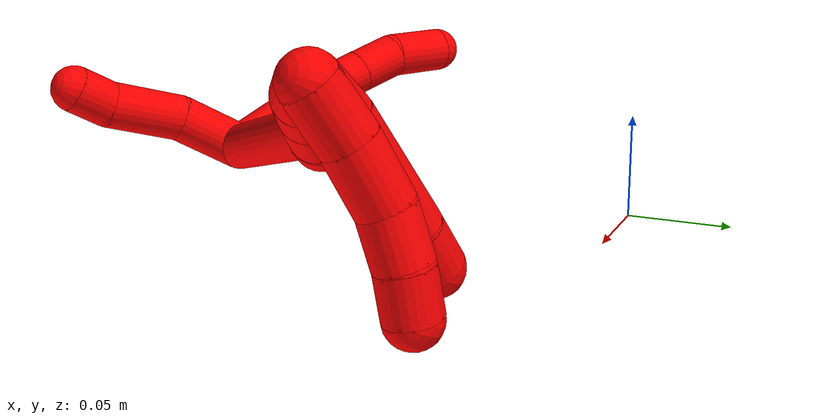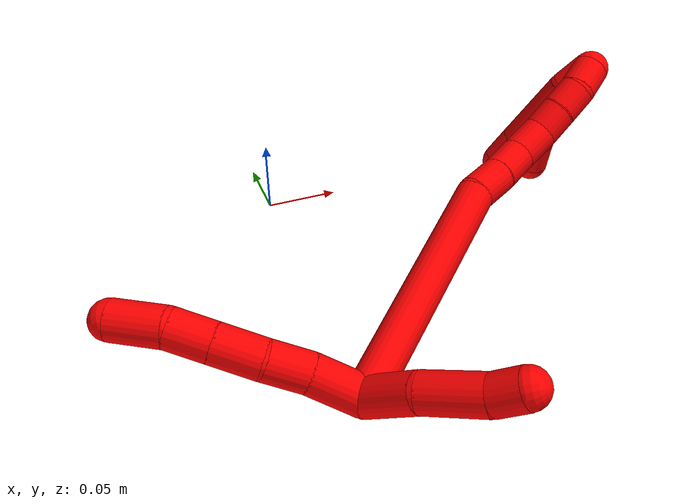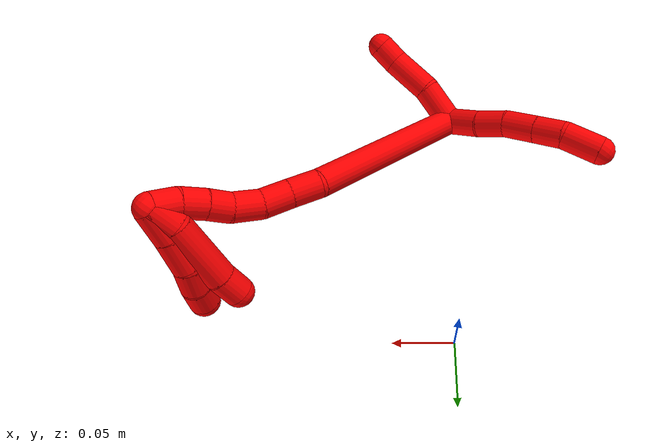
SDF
<sdf version="1.7">
 <world name="default">
  <model name="2">
   <static>0</static>
   <link name="2">
    <collision name="collision-cylinder-e_1_2_8">
     <pose>0.000701 0.011869 -0.011958 -2.35993 0.041562 -0.100801</pose>
     <geometry><cylinder><radius>0.0125</radius><length>0.033725</length></cylinder></geometry>
     <surface>
      <friction><ode><mu>1.16</mu><mu2>1.16</mu2><slip1>0</slip1><slip2>0</slip2></ode></friction>
      <contact><ode><kp>1e+06</kp><kd>1</kd><max_vel>0</max_vel><min_depth>0.001</min_depth></ode></contact>
     </surface>
    </collision>
    <visual name="visual-cylinder-e_1_2_8">
     <pose>0.000701 0.011869 -0.011958 -2.35993 0.041562 -0.100801</pose>
     <geometry><cylinder><radius>0.0125</radius><length>0.033725</length></cylinder></geometry>
     <material><ambient>1 0 0 1</ambient></material>
    </visual>
    <collision name="collision-cylinder-e_2_8_9">
     <pose>-0.000104 0.032993 -0.033517 -2.37454 -0.112368 0.276987</pose>
     <geometry><cylinder><radius>0.0125</radius><length>0.026841</length></cylinder></geometry>
     <surface>
      <friction><ode><mu>1.16</mu><mu2>1.16</mu2><slip1>0</slip1><slip2>0</slip2></ode></friction>
      <contact><ode><kp>1e+06</kp><kd>1</kd><max_vel>0</max_vel><min_depth>0.001</min_depth></ode></contact>
     </surface>
    </collision>
    <visual name="visual-cylinder-e_2_8_9">
     <pose>-0.000104 0.032993 -0.033517 -2.37454 -0.112368 0.276987</pose>
     <geometry><cylinder><radius>0.0125</radius><length>0.026841</length></cylinder></geometry>
     <material><ambient>1 0 0 1</ambient></material>
    </visual>
    <collision name="collision-cylinder-e_3_9_10">
     <pose>-0.00101 0.051331 -0.054927 -2.48594 0.040129 -0.117872</pose>
     <geometry><cylinder><radius>0.0125</radius><length>0.02982</length></cylinder></geometry>
     <surface>
      <friction><ode><mu>1.16</mu><mu2>1.16</mu2><slip1>0</slip1><slip2>0</slip2></ode></friction>
      <contact><ode><kp>1e+06</kp><kd>1</kd><max_vel>0</max_vel><min_depth>0.001</min_depth></ode></contact>
     </surface>
    </collision>
    <visual name="visual-cylinder-e_3_9_10">
     <pose>-0.00101 0.051331 -0.054927 -2.48594 0.040129 -0.117872</pose>
     <geometry><cylinder><radius>0.0125</radius><length>0.02982</length></cylinder></geometry>
     <material><ambient>1 0 0 1</ambient></material>
    </visual>
    <collision name="collision-cylinder-e_4_10_11">
     <pose>0.00018 0.068372 -0.077148 -2.48902 0.045178 -0.133338</pose>
     <geometry><cylinder><radius>0.0125</radius><length>0.026236</length></cylinder></geometry>
     <surface>
      <friction><ode><mu>1.16</mu><mu2>1.16</mu2><slip1>0</slip1><slip2>0</slip2></ode></friction>
      <contact><ode><kp>1e+06</kp><kd>1</kd><max_vel>0</max_vel><min_depth>0.001</min_depth></ode></contact>
     </surface>
    </collision>
    <visual name="visual-cylinder-e_4_10_11">
     <pose>0.00018 0.068372 -0.077148 -2.48902 0.045178 -0.133338</pose>
     <geometry><cylinder><radius>0.0125</radius><length>0.026236</length></cylinder></geometry>
     <material><ambient>1 0 0 1</ambient></material>
    </visual>
    <collision name="collision-cylinder-e_5_11_6">
     <pose>0.001684 0.082335 -0.103104 -2.77291 0.054641 -0.291049</pose>
     <geometry><cylinder><radius>0.0125</radius><length>0.033377</length></cylinder></geometry>
     <surface>
      <friction><ode><mu>1.16</mu><mu2>1.16</mu2><slip1>0</slip1><slip2>0</slip2></ode></friction>
      <contact><ode><kp>1e+06</kp><kd>1</kd><max_vel>0</max_vel><min_depth>0.001</min_depth></ode></contact>
     </surface>
    </collision>
    <visual name="visual-cylinder-e_5_11_6">
     <pose>0.001684 0.082335 -0.103104 -2.77291 0.054641 -0.291049</pose>
     <geometry><cylinder><radius>0.0125</radius><length>0.033377</length></cylinder></geometry>
     <material><ambient>1 0 0 1</ambient></material>
    </visual>
    <collision name="collision-cylinder-e_1_2_12">
     <pose>-0.005193 0.003411 0.01827 -0.184597 -0.272438 0.025373</pose>
     <geometry><cylinder><radius>0.0125</radius><length>0.038595</length></cylinder></geometry>
     <surface>
      <friction><ode><mu>1.16</mu><mu2>1.16</mu2><slip1>0</slip1><slip2>0</slip2></ode></friction>
      <contact><ode><kp>1e+06</kp><kd>1</kd><max_vel>0</max_vel><min_depth>0.001</min_depth></ode></contact>
     </surface>
    </collision>
    <visual name="visual-cylinder-e_1_2_12">
     <pose>-0.005193 0.003411 0.01827 -0.184597 -0.272438 0.025373</pose>
     <geometry><cylinder><radius>0.0125</radius><length>0.038595</length></cylinder></geometry>
     <material><ambient>1 0 0 1</ambient></material>
    </visual>
    <collision name="collision-cylinder-e_2_12_13">
     <pose>-0.014169 0.005382 0.056451 0.072229 -0.187316 -0.006788</pose>
     <geometry><cylinder><radius>0.0125</radius><length>0.040636</length></cylinder></geometry>
     <surface>
      <friction><ode><mu>1.16</mu><mu2>1.16</mu2><slip1>0</slip1><slip2>0</slip2></ode></friction>
      <contact><ode><kp>1e+06</kp><kd>1</kd><max_vel>0</max_vel><min_depth>0.001</min_depth></ode></contact>
     </surface>
    </collision>
    <visual name="visual-cylinder-e_2_12_13">
     <pose>-0.014169 0.005382 0.056451 0.072229 -0.187316 -0.006788</pose>
     <geometry><cylinder><radius>0.0125</radius><length>0.040636</length></cylinder></geometry>
     <material><ambient>1 0 0 1</ambient></material>
    </visual>
    <collision name="collision-cylinder-e_3_13_5">
     <pose>-0.019133 0.005575 0.086548 -0.15895 -0.113885 0.00908</pose>
     <geometry><cylinder><radius>0.0125</radius><length>0.020769</length></cylinder></geometry>
     <surface>
      <friction><ode><mu>1.16</mu><mu2>1.16</mu2><slip1>0</slip1><slip2>0</slip2></ode></friction>
      <contact><ode><kp>1e+06</kp><kd>1</kd><max_vel>0</max_vel><min_depth>0.001</min_depth></ode></contact>
     </surface>
    </collision>
    <visual name="visual-cylinder-e_3_13_5">
     <pose>-0.019133 0.005575 0.086548 -0.15895 -0.113885 0.00908</pose>
     <geometry><cylinder><radius>0.0125</radius><length>0.020769</length></cylinder></geometry>
     <material><ambient>1 0 0 1</ambient></material>
    </visual>
    <collision name="collision-cylinder-e_1_2_14">
     <pose>0.075079 0.008089 0.030935 -0.255758 1.16817 -0.169582</pose>
     <geometry><cylinder><radius>0.0125</radius><length>0.163209</length></cylinder></geometry>
     <surface>
      <friction><ode><mu>1.16</mu><mu2>1.16</mu2><slip1>0</slip1><slip2>0</slip2></ode></friction>
      <contact><ode><kp>1e+06</kp><kd>1</kd><max_vel>0</max_vel><min_depth>0.001</min_depth></ode></contact>
     </surface>
    </collision>
    <visual name="visual-cylinder-e_1_2_14">
     <pose>0.075079 0.008089 0.030935 -0.255758 1.16817 -0.169582</pose>
     <geometry><cylinder><radius>0.0125</radius><length>0.163209</length></cylinder></geometry>
     <material><ambient>1 0 0 1</ambient></material>
    </visual>
    <collision name="collision-cylinder-e_2_14_15">
     <pose>0.160902 0.014446 0.068894 0.241845 0.978205 0.12917</pose>
     <geometry><cylinder><radius>0.0125</radius><length>0.025905</length></cylinder></geometry>
     <surface>
      <friction><ode><mu>1.16</mu><mu2>1.16</mu2><slip1>0</slip1><slip2>0</slip2></ode></friction>
      <contact><ode><kp>1e+06</kp><kd>1</kd><max_vel>0</max_vel><min_depth>0.001</min_depth></ode></contact>
     </surface>
    </collision>
    <visual name="visual-cylinder-e_2_14_15">
     <pose>0.160902 0.014446 0.068894 0.241845 0.978205 0.12917</pose>
     <geometry><cylinder><radius>0.0125</radius><length>0.025905</length></cylinder></geometry>
     <material><ambient>1 0 0 1</ambient></material>
    </visual>
    <collision name="collision-cylinder-e_3_15_16">
     <pose>0.182365 0.011899 0.082194 0.129085 1.03744 0.073759</pose>
     <geometry><cylinder><radius>0.0125</radius><length>0.024895</length></cylinder></geometry>
     <surface>
      <friction><ode><mu>1.16</mu><mu2>1.16</mu2><slip1>0</slip1><slip2>0</slip2></ode></friction>
      <contact><ode><kp>1e+06</kp><kd>1</kd><max_vel>0</max_vel><min_depth>0.001</min_depth></ode></contact>
     </surface>
    </collision>
    <visual name="visual-cylinder-e_3_15_16">
     <pose>0.182365 0.011899 0.082194 0.129085 1.03744 0.073759</pose>
     <geometry><cylinder><radius>0.0125</radius><length>0.024895</length></cylinder></geometry>
     <material><ambient>1 0 0 1</ambient></material>
    </visual>
    <collision name="collision-cylinder-e_4_16_17">
     <pose>0.202269 0.012169 0.096632 -0.132119 0.840002 -0.05907</pose>
     <geometry><cylinder><radius>0.0125</radius><length>0.024673</length></cylinder></geometry>
     <surface>
      <friction><ode><mu>1.16</mu><mu2>1.16</mu2><slip1>0</slip1><slip2>0</slip2></ode></friction>
      <contact><ode><kp>1e+06</kp><kd>1</kd><max_vel>0</max_vel><min_depth>0.001</min_depth></ode></contact>
     </surface>
    </collision>
    <visual name="visual-cylinder-e_4_16_17">
     <pose>0.202269 0.012169 0.096632 -0.132119 0.840002 -0.05907</pose>
     <geometry><cylinder><radius>0.0125</radius><length>0.024673</length></cylinder></geometry>
     <material><ambient>1 0 0 1</ambient></material>
    </visual>
    <collision name="collision-cylinder-e_5_17_18">
     <pose>0.21737 0.01626 0.112308 -0.380612 0.631115 -0.125614</pose>
     <geometry><cylinder><radius>0.0125</radius><length>0.020047</length></cylinder></geometry>
     <surface>
      <friction><ode><mu>1.16</mu><mu2>1.16</mu2><slip1>0</slip1><slip2>0</slip2></ode></friction>
      <contact><ode><kp>1e+06</kp><kd>1</kd><max_vel>0</max_vel><min_depth>0.001</min_depth></ode></contact>
     </surface>
    </collision>
    <visual name="visual-cylinder-e_5_17_18">
     <pose>0.21737 0.01626 0.112308 -0.380612 0.631115 -0.125614</pose>
     <geometry><cylinder><radius>0.0125</radius><length>0.020047</length></cylinder></geometry>
     <material><ambient>1 0 0 1</ambient></material>
    </visual>
    <collision name="collision-cylinder-e_6_18_19">
     <pose>0.229911 0.021858 0.1271 -0.342118 0.708967 -0.1277</pose>
     <geometry><cylinder><radius>0.0125</radius><length>0.020358</length></cylinder></geometry>
     <surface>
      <friction><ode><mu>1.16</mu><mu2>1.16</mu2><slip1>0</slip1><slip2>0</slip2></ode></friction>
      <contact><ode><kp>1e+06</kp><kd>1</kd><max_vel>0</max_vel><min_depth>0.001</min_depth></ode></contact>
     </surface>
    </collision>
    <visual name="visual-cylinder-e_6_18_19">
     <pose>0.229911 0.021858 0.1271 -0.342118 0.708967 -0.1277</pose>
     <geometry><cylinder><radius>0.0125</radius><length>0.020358</length></cylinder></geometry>
     <material><ambient>1 0 0 1</ambient></material>
    </visual>
    <collision name="collision-cylinder-e_7_19_1">
     <pose>0.245107 0.026581 0.139979 -0.363588 0.960488 -0.190933</pose>
     <geometry><cylinder><radius>0.0125</radius><length>0.020914</length></cylinder></geometry>
     <surface>
      <friction><ode><mu>1.16</mu><mu2>1.16</mu2><slip1>0</slip1><slip2>0</slip2></ode></friction>
      <contact><ode><kp>1e+06</kp><kd>1</kd><max_vel>0</max_vel><min_depth>0.001</min_depth></ode></contact>
     </surface>
    </collision>
    <visual name="visual-cylinder-e_7_19_1">
     <pose>0.245107 0.026581 0.139979 -0.363588 0.960488 -0.190933</pose>
     <geometry><cylinder><radius>0.0125</radius><length>0.020914</length></cylinder></geometry>
     <material><ambient>1 0 0 1</ambient></material>
    </visual>
    <collision name="collision-cylinder-e_1_1_20">
     <pose>0.255509 0.020481 0.134926 2.48383 0.135299 0.39196</pose>
     <geometry><cylinder><radius>0.0125</radius><length>0.027177</length></cylinder></geometry>
     <surface>
      <friction><ode><mu>1.16</mu><mu2>1.16</mu2><slip1>0</slip1><slip2>0</slip2></ode></friction>
      <contact><ode><kp>1e+06</kp><kd>1</kd><max_vel>0</max_vel><min_depth>0.001</min_depth></ode></contact>
     </surface>
    </collision>
    <visual name="visual-cylinder-e_1_1_20">
     <pose>0.255509 0.020481 0.134926 2.48383 0.135299 0.39196</pose>
     <geometry><cylinder><radius>0.0125</radius><length>0.027177</length></cylinder></geometry>
     <material><ambient>1 0 0 1</ambient></material>
    </visual>
    <collision name="collision-cylinder-e_2_20_21">
     <pose>0.259524 0.00243 0.113883 2.3843 0.151457 0.3769</pose>
     <geometry><cylinder><radius>0.0125</radius><length>0.028921</length></cylinder></geometry>
     <surface>
      <friction><ode><mu>1.16</mu><mu2>1.16</mu2><slip1>0</slip1><slip2>0</slip2></ode></friction>
      <contact><ode><kp>1e+06</kp><kd>1</kd><max_vel>0</max_vel><min_depth>0.001</min_depth></ode></contact>
     </surface>
    </collision>
    <visual name="visual-cylinder-e_2_20_21">
     <pose>0.259524 0.00243 0.113883 2.3843 0.151457 0.3769</pose>
     <geometry><cylinder><radius>0.0125</radius><length>0.028921</length></cylinder></geometry>
     <material><ambient>1 0 0 1</ambient></material>
    </visual>
    <collision name="collision-cylinder-e_3_21_22">
     <pose>0.263698 -0.016982 0.097482 2.13074 0.174185 0.312989</pose>
     <geometry><cylinder><radius>0.0125</radius><length>0.022991</length></cylinder></geometry>
     <surface>
      <friction><ode><mu>1.16</mu><mu2>1.16</mu2><slip1>0</slip1><slip2>0</slip2></ode></friction>
      <contact><ode><kp>1e+06</kp><kd>1</kd><max_vel>0</max_vel><min_depth>0.001</min_depth></ode></contact>
     </surface>
    </collision>
    <visual name="visual-cylinder-e_3_21_22">
     <pose>0.263698 -0.016982 0.097482 2.13074 0.174185 0.312989</pose>
     <geometry><cylinder><radius>0.0125</radius><length>0.022991</length></cylinder></geometry>
     <material><ambient>1 0 0 1</ambient></material>
    </visual>
    <collision name="collision-cylinder-e_4_22_4">
     <pose>0.266052 -0.03568 0.086341 2.08371 0.034614 0.059209</pose>
     <geometry><cylinder><radius>0.0125</radius><length>0.020912</length></cylinder></geometry>
     <surface>
      <friction><ode><mu>1.16</mu><mu2>1.16</mu2><slip1>0</slip1><slip2>0</slip2></ode></friction>
      <contact><ode><kp>1e+06</kp><kd>1</kd><max_vel>0</max_vel><min_depth>0.001</min_depth></ode></contact>
     </surface>
    </collision>
    <visual name="visual-cylinder-e_4_22_4">
     <pose>0.266052 -0.03568 0.086341 2.08371 0.034614 0.059209</pose>
     <geometry><cylinder><radius>0.0125</radius><length>0.020912</length></cylinder></geometry>
     <material><ambient>1 0 0 1</ambient></material>
    </visual>
    <collision name="collision-cylinder-e_1_1_23">
     <pose>0.252272 0.024226 0.135332 2.72893 -0.124853 -0.580406</pose>
     <geometry><cylinder><radius>0.0125</radius><length>0.022551</length></cylinder></geometry>
     <surface>
      <friction><ode><mu>1.16</mu><mu2>1.16</mu2><slip1>0</slip1><slip2>0</slip2></ode></friction>
      <contact><ode><kp>1e+06</kp><kd>1</kd><max_vel>0</max_vel><min_depth>0.001</min_depth></ode></contact>
     </surface>
    </collision>
    <visual name="visual-cylinder-e_1_1_23">
     <pose>0.252272 0.024226 0.135332 2.72893 -0.124853 -0.580406</pose>
     <geometry><cylinder><radius>0.0125</radius><length>0.022551</length></cylinder></geometry>
     <material><ambient>1 0 0 1</ambient></material>
    </visual>
    <collision name="collision-cylinder-e_2_23_24">
     <pose>0.251623 0.003183 0.102649 2.50582 0.027077 0.082247</pose>
     <geometry><cylinder><radius>0.0125</radius><length>0.055784</length></cylinder></geometry>
     <surface>
      <friction><ode><mu>1.16</mu><mu2>1.16</mu2><slip1>0</slip1><slip2>0</slip2></ode></friction>
      <contact><ode><kp>1e+06</kp><kd>1</kd><max_vel>0</max_vel><min_depth>0.001</min_depth></ode></contact>
     </surface>
    </collision>
    <visual name="visual-cylinder-e_2_23_24">
     <pose>0.251623 0.003183 0.102649 2.50582 0.027077 0.082247</pose>
     <geometry><cylinder><radius>0.0125</radius><length>0.055784</length></cylinder></geometry>
     <material><ambient>1 0 0 1</ambient></material>
    </visual>
    <collision name="collision-cylinder-e_3_24_3">
     <pose>0.251244 -0.01943 0.071306 2.54457 -0.104904 -0.337981</pose>
     <geometry><cylinder><radius>0.0125</radius><length>0.021665</length></cylinder></geometry>
     <surface>
      <friction><ode><mu>1.16</mu><mu2>1.16</mu2><slip1>0</slip1><slip2>0</slip2></ode></friction>
      <contact><ode><kp>1e+06</kp><kd>1</kd><max_vel>0</max_vel><min_depth>0.001</min_depth></ode></contact>
     </surface>
    </collision>
    <visual name="visual-cylinder-e_3_24_3">
     <pose>0.251244 -0.01943 0.071306 2.54457 -0.104904 -0.337981</pose>
     <geometry><cylinder><radius>0.0125</radius><length>0.021665</length></cylinder></geometry>
     <material><ambient>1 0 0 1</ambient></material>
    </visual>
    <collision name="collision-sphere-3">
     <pose>0.25011 -0.025486 0.062397 0 -0 0</pose>
     <geometry><sphere><radius>0.0125</radius></sphere></geometry>
     <surface>
      <friction><ode><mu>1.16</mu><mu2>1.16</mu2><slip1>0</slip1><slip2>0</slip2></ode></friction>
      <contact><ode><kp>1e+06</kp><kd>1</kd><max_vel>0</max_vel><min_depth>0.001</min_depth></ode></contact>
     </surface>
    </collision>
    <visual name="visual-sphere-3">
     <pose>0.25011 -0.025486 0.062397 0 -0 0</pose>
     <geometry><sphere><radius>0.0125</radius></sphere></geometry>
     <material><ambient>1 0 0 1</ambient></material>
    </visual>
    <collision name="collision-sphere-24">
     <pose>0.252378 -0.013373 0.080215 0 -0 0</pose>
     <geometry><sphere><radius>0.0125</radius></sphere></geometry>
     <surface>
      <friction><ode><mu>1.16</mu><mu2>1.16</mu2><slip1>0</slip1><slip2>0</slip2></ode></friction>
      <contact><ode><kp>1e+06</kp><kd>1</kd><max_vel>0</max_vel><min_depth>0.001</min_depth></ode></contact>
     </surface>
    </collision>
    <visual name="visual-sphere-24">
     <pose>0.252378 -0.013373 0.080215 0 -0 0</pose>
     <geometry><sphere><radius>0.0125</radius></sphere></geometry>
     <material><ambient>1 0 0 1</ambient></material>
    </visual>
    <collision name="collision-sphere-23">
     <pose>0.250868 0.019739 0.125084 0 -0 0</pose>
     <geometry><sphere><radius>0.0125</radius></sphere></geometry>
     <surface>
      <friction><ode><mu>1.16</mu><mu2>1.16</mu2><slip1>0</slip1><slip2>0</slip2></ode></friction>
      <contact><ode><kp>1e+06</kp><kd>1</kd><max_vel>0</max_vel><min_depth>0.001</min_depth></ode></contact>
     </surface>
    </collision>
    <visual name="visual-sphere-23">
     <pose>0.250868 0.019739 0.125084 0 -0 0</pose>
     <geometry><sphere><radius>0.0125</radius></sphere></geometry>
     <material><ambient>1 0 0 1</ambient></material>
    </visual>
    <collision name="collision-sphere-4">
     <pose>0.266414 -0.044785 0.081213 0 -0 0</pose>
     <geometry><sphere><radius>0.0125</radius></sphere></geometry>
     <surface>
      <friction><ode><mu>1.16</mu><mu2>1.16</mu2><slip1>0</slip1><slip2>0</slip2></ode></friction>
      <contact><ode><kp>1e+06</kp><kd>1</kd><max_vel>0</max_vel><min_depth>0.001</min_depth></ode></contact>
     </surface>
    </collision>
    <visual name="visual-sphere-4">
     <pose>0.266414 -0.044785 0.081213 0 -0 0</pose>
     <geometry><sphere><radius>0.0125</radius></sphere></geometry>
     <material><ambient>1 0 0 1</ambient></material>
    </visual>
    <collision name="collision-sphere-22">
     <pose>0.26569 -0.026574 0.091468 0 -0 0</pose>
     <geometry><sphere><radius>0.0125</radius></sphere></geometry>
     <surface>
      <friction><ode><mu>1.16</mu><mu2>1.16</mu2><slip1>0</slip1><slip2>0</slip2></ode></friction>
      <contact><ode><kp>1e+06</kp><kd>1</kd><max_vel>0</max_vel><min_depth>0.001</min_depth></ode></contact>
     </surface>
    </collision>
    <visual name="visual-sphere-22">
     <pose>0.26569 -0.026574 0.091468 0 -0 0</pose>
     <geometry><sphere><radius>0.0125</radius></sphere></geometry>
     <material><ambient>1 0 0 1</ambient></material>
    </visual>
    <collision name="collision-sphere-21">
     <pose>0.261706 -0.00739 0.103495 0 -0 0</pose>
     <geometry><sphere><radius>0.0125</radius></sphere></geometry>
     <surface>
      <friction><ode><mu>1.16</mu><mu2>1.16</mu2><slip1>0</slip1><slip2>0</slip2></ode></friction>
      <contact><ode><kp>1e+06</kp><kd>1</kd><max_vel>0</max_vel><min_depth>0.001</min_depth></ode></contact>
     </surface>
    </collision>
    <visual name="visual-sphere-21">
     <pose>0.261706 -0.00739 0.103495 0 -0 0</pose>
     <geometry><sphere><radius>0.0125</radius></sphere></geometry>
     <material><ambient>1 0 0 1</ambient></material>
    </visual>
    <collision name="collision-sphere-20">
     <pose>0.257342 0.01225 0.124271 0 -0 0</pose>
     <geometry><sphere><radius>0.0125</radius></sphere></geometry>
     <surface>
      <friction><ode><mu>1.16</mu><mu2>1.16</mu2><slip1>0</slip1><slip2>0</slip2></ode></friction>
      <contact><ode><kp>1e+06</kp><kd>1</kd><max_vel>0</max_vel><min_depth>0.001</min_depth></ode></contact>
     </surface>
    </collision>
    <visual name="visual-sphere-20">
     <pose>0.257342 0.01225 0.124271 0 -0 0</pose>
     <geometry><sphere><radius>0.0125</radius></sphere></geometry>
     <material><ambient>1 0 0 1</ambient></material>
    </visual>
    <collision name="collision-sphere-6">
     <pose>0.002596 0.08834 -0.118648 0 -0 0</pose>
     <geometry><sphere><radius>0.0125</radius></sphere></geometry>
     <surface>
      <friction><ode><mu>1.16</mu><mu2>1.16</mu2><slip1>0</slip1><slip2>0</slip2></ode></friction>
      <contact><ode><kp>1e+06</kp><kd>1</kd><max_vel>0</max_vel><min_depth>0.001</min_depth></ode></contact>
     </surface>
    </collision>
    <visual name="visual-sphere-6">
     <pose>0.002596 0.08834 -0.118648 0 -0 0</pose>
     <geometry><sphere><radius>0.0125</radius></sphere></geometry>
     <material><ambient>1 0 0 1</ambient></material>
    </visual>
    <collision name="collision-sphere-11">
     <pose>0.000773 0.076329 -0.08756 0 -0 0</pose>
     <geometry><sphere><radius>0.0125</radius></sphere></geometry>
     <surface>
      <friction><ode><mu>1.16</mu><mu2>1.16</mu2><slip1>0</slip1><slip2>0</slip2></ode></friction>
      <contact><ode><kp>1e+06</kp><kd>1</kd><max_vel>0</max_vel><min_depth>0.001</min_depth></ode></contact>
     </surface>
    </collision>
    <visual name="visual-sphere-11">
     <pose>0.000773 0.076329 -0.08756 0 -0 0</pose>
     <geometry><sphere><radius>0.0125</radius></sphere></geometry>
     <material><ambient>1 0 0 1</ambient></material>
    </visual>
    <collision name="collision-sphere-10">
     <pose>-0.000412 0.060414 -0.066736 0 -0 0</pose>
     <geometry><sphere><radius>0.0125</radius></sphere></geometry>
     <surface>
      <friction><ode><mu>1.16</mu><mu2>1.16</mu2><slip1>0</slip1><slip2>0</slip2></ode></friction>
      <contact><ode><kp>1e+06</kp><kd>1</kd><max_vel>0</max_vel><min_depth>0.001</min_depth></ode></contact>
     </surface>
    </collision>
    <visual name="visual-sphere-10">
     <pose>-0.000412 0.060414 -0.066736 0 -0 0</pose>
     <geometry><sphere><radius>0.0125</radius></sphere></geometry>
     <material><ambient>1 0 0 1</ambient></material>
    </visual>
    <collision name="collision-sphere-9">
     <pose>-0.001608 0.042248 -0.043118 0 -0 0</pose>
     <geometry><sphere><radius>0.0125</radius></sphere></geometry>
     <surface>
      <friction><ode><mu>1.16</mu><mu2>1.16</mu2><slip1>0</slip1><slip2>0</slip2></ode></friction>
      <contact><ode><kp>1e+06</kp><kd>1</kd><max_vel>0</max_vel><min_depth>0.001</min_depth></ode></contact>
     </surface>
    </collision>
    <visual name="visual-sphere-9">
     <pose>-0.001608 0.042248 -0.043118 0 -0 0</pose>
     <geometry><sphere><radius>0.0125</radius></sphere></geometry>
     <material><ambient>1 0 0 1</ambient></material>
    </visual>
    <collision name="collision-sphere-2">
     <geometry><sphere><radius>0.0125</radius></sphere></geometry>
     <surface>
      <friction><ode><mu>1.16</mu><mu2>1.16</mu2><slip1>0</slip1><slip2>0</slip2></ode></friction>
      <contact><ode><kp>1e+06</kp><kd>1</kd><max_vel>0</max_vel><min_depth>0.001</min_depth></ode></contact>
     </surface>
    </collision>
    <visual name="visual-sphere-2">
     <geometry><sphere><radius>0.0125</radius></sphere></geometry>
     <material><ambient>1 0 0 1</ambient></material>
    </visual>
    <collision name="collision-sphere-19">
     <pose>0.236538 0.02445 0.134378 0 -0 0</pose>
     <geometry><sphere><radius>0.0125</radius></sphere></geometry>
     <surface>
      <friction><ode><mu>1.16</mu><mu2>1.16</mu2><slip1>0</slip1><slip2>0</slip2></ode></friction>
      <contact><ode><kp>1e+06</kp><kd>1</kd><max_vel>0</max_vel><min_depth>0.001</min_depth></ode></contact>
     </surface>
    </collision>
    <visual name="visual-sphere-19">
     <pose>0.236538 0.02445 0.134378 0 -0 0</pose>
     <geometry><sphere><radius>0.0125</radius></sphere></geometry>
     <material><ambient>1 0 0 1</ambient></material>
    </visual>
    <collision name="collision-sphere-8">
     <pose>0.001401 0.023738 -0.023916 0 -0 0</pose>
     <geometry><sphere><radius>0.0125</radius></sphere></geometry>
     <surface>
      <friction><ode><mu>1.16</mu><mu2>1.16</mu2><slip1>0</slip1><slip2>0</slip2></ode></friction>
      <contact><ode><kp>1e+06</kp><kd>1</kd><max_vel>0</max_vel><min_depth>0.001</min_depth></ode></contact>
     </surface>
    </collision>
    <visual name="visual-sphere-8">
     <pose>0.001401 0.023738 -0.023916 0 -0 0</pose>
     <geometry><sphere><radius>0.0125</radius></sphere></geometry>
     <material><ambient>1 0 0 1</ambient></material>
    </visual>
    <collision name="collision-sphere-12">
     <pose>-0.010385 0.006823 0.03654 0 -0 0</pose>
     <geometry><sphere><radius>0.0125</radius></sphere></geometry>
     <surface>
      <friction><ode><mu>1.16</mu><mu2>1.16</mu2><slip1>0</slip1><slip2>0</slip2></ode></friction>
      <contact><ode><kp>1e+06</kp><kd>1</kd><max_vel>0</max_vel><min_depth>0.001</min_depth></ode></contact>
     </surface>
    </collision>
    <visual name="visual-sphere-12">
     <pose>-0.010385 0.006823 0.03654 0 -0 0</pose>
     <geometry><sphere><radius>0.0125</radius></sphere></geometry>
     <material><ambient>1 0 0 1</ambient></material>
    </visual>
    <collision name="collision-sphere-13">
     <pose>-0.017953 0.003942 0.076361 0 -0 0</pose>
     <geometry><sphere><radius>0.0125</radius></sphere></geometry>
     <surface>
      <friction><ode><mu>1.16</mu><mu2>1.16</mu2><slip1>0</slip1><slip2>0</slip2></ode></friction>
      <contact><ode><kp>1e+06</kp><kd>1</kd><max_vel>0</max_vel><min_depth>0.001</min_depth></ode></contact>
     </surface>
    </collision>
    <visual name="visual-sphere-13">
     <pose>-0.017953 0.003942 0.076361 0 -0 0</pose>
     <geometry><sphere><radius>0.0125</radius></sphere></geometry>
     <material><ambient>1 0 0 1</ambient></material>
    </visual>
    <collision name="collision-sphere-5">
     <pose>-0.020313 0.007208 0.096735 0 -0 0</pose>
     <geometry><sphere><radius>0.0125</radius></sphere></geometry>
     <surface>
      <friction><ode><mu>1.16</mu><mu2>1.16</mu2><slip1>0</slip1><slip2>0</slip2></ode></friction>
      <contact><ode><kp>1e+06</kp><kd>1</kd><max_vel>0</max_vel><min_depth>0.001</min_depth></ode></contact>
     </surface>
    </collision>
    <visual name="visual-sphere-5">
     <pose>-0.020313 0.007208 0.096735 0 -0 0</pose>
     <geometry><sphere><radius>0.0125</radius></sphere></geometry>
     <material><ambient>1 0 0 1</ambient></material>
    </visual>
    <collision name="collision-sphere-14">
     <pose>0.150158 0.016178 0.061871 0 -0 0</pose>
     <geometry><sphere><radius>0.0125</radius></sphere></geometry>
     <surface>
      <friction><ode><mu>1.16</mu><mu2>1.16</mu2><slip1>0</slip1><slip2>0</slip2></ode></friction>
      <contact><ode><kp>1e+06</kp><kd>1</kd><max_vel>0</max_vel><min_depth>0.001</min_depth></ode></contact>
     </surface>
    </collision>
    <visual name="visual-sphere-14">
     <pose>0.150158 0.016178 0.061871 0 -0 0</pose>
     <geometry><sphere><radius>0.0125</radius></sphere></geometry>
     <material><ambient>1 0 0 1</ambient></material>
    </visual>
    <collision name="collision-sphere-15">
     <pose>0.171646 0.012713 0.075918 0 -0 0</pose>
     <geometry><sphere><radius>0.0125</radius></sphere></geometry>
     <surface>
      <friction><ode><mu>1.16</mu><mu2>1.16</mu2><slip1>0</slip1><slip2>0</slip2></ode></friction>
      <contact><ode><kp>1e+06</kp><kd>1</kd><max_vel>0</max_vel><min_depth>0.001</min_depth></ode></contact>
     </surface>
    </collision>
    <visual name="visual-sphere-15">
     <pose>0.171646 0.012713 0.075918 0 -0 0</pose>
     <geometry><sphere><radius>0.0125</radius></sphere></geometry>
     <material><ambient>1 0 0 1</ambient></material>
    </visual>
    <collision name="collision-sphere-16">
     <pose>0.193083 0.011084 0.08847 0 -0 0</pose>
     <geometry><sphere><radius>0.0125</radius></sphere></geometry>
     <surface>
      <friction><ode><mu>1.16</mu><mu2>1.16</mu2><slip1>0</slip1><slip2>0</slip2></ode></friction>
      <contact><ode><kp>1e+06</kp><kd>1</kd><max_vel>0</max_vel><min_depth>0.001</min_depth></ode></contact>
     </surface>
    </collision>
    <visual name="visual-sphere-16">
     <pose>0.193083 0.011084 0.08847 0 -0 0</pose>
     <geometry><sphere><radius>0.0125</radius></sphere></geometry>
     <material><ambient>1 0 0 1</ambient></material>
    </visual>
    <collision name="collision-sphere-17">
     <pose>0.211455 0.013253 0.104794 0 -0 0</pose>
     <geometry><sphere><radius>0.0125</radius></sphere></geometry>
     <surface>
      <friction><ode><mu>1.16</mu><mu2>1.16</mu2><slip1>0</slip1><slip2>0</slip2></ode></friction>
      <contact><ode><kp>1e+06</kp><kd>1</kd><max_vel>0</max_vel><min_depth>0.001</min_depth></ode></contact>
     </surface>
    </collision>
    <visual name="visual-sphere-17">
     <pose>0.211455 0.013253 0.104794 0 -0 0</pose>
     <geometry><sphere><radius>0.0125</radius></sphere></geometry>
     <material><ambient>1 0 0 1</ambient></material>
    </visual>
    <collision name="collision-sphere-18">
     <pose>0.223284 0.019266 0.119822 0 -0 0</pose>
     <geometry><sphere><radius>0.0125</radius></sphere></geometry>
     <surface>
      <friction><ode><mu>1.16</mu><mu2>1.16</mu2><slip1>0</slip1><slip2>0</slip2></ode></friction>
      <contact><ode><kp>1e+06</kp><kd>1</kd><max_vel>0</max_vel><min_depth>0.001</min_depth></ode></contact>
     </surface>
    </collision>
    <visual name="visual-sphere-18">
     <pose>0.223284 0.019266 0.119822 0 -0 0</pose>
     <geometry><sphere><radius>0.0125</radius></sphere></geometry>
     <material><ambient>1 0 0 1</ambient></material>
    </visual>
    <collision name="collision-sphere-1">
     <pose>0.253676 0.028713 0.145581 0 -0 0</pose>
     <geometry><sphere><radius>0.0125</radius></sphere></geometry>
     <surface>
      <friction><ode><mu>1.16</mu><mu2>1.16</mu2><slip1>0</slip1><slip2>0</slip2></ode></friction>
      <contact><ode><kp>1e+06</kp><kd>1</kd><max_vel>0</max_vel><min_depth>0.001</min_depth></ode></contact>
     </surface>
    </collision>
    <visual name="visual-sphere-1">
     <pose>0.253676 0.028713 0.145581 0 -0 0</pose>
     <geometry><sphere><radius>0.0125</radius></sphere></geometry>
     <material><ambient>1 0 0 1</ambient></material>
    </visual>
    <inertial>
     <pose>0.120319 0.014981 0.049001 0 -0 0</pose>
     <mass>0.75</mass>
     <inertia>
      <ixx>0.000205</ixx>
      <ixy>0</ixy>
      <ixz>0</ixz>
      <iyy>0.000333</iyy>
      <iyz>0</iyz>
      <izz>-0.000378</izz>
     </inertia>
    </inertial>
   </link>
   <pose>-0.007096 -0.222462 0.011491 1.20588 -0.048228 1.0696</pose>
  </model>
 </world>
</sdf>
